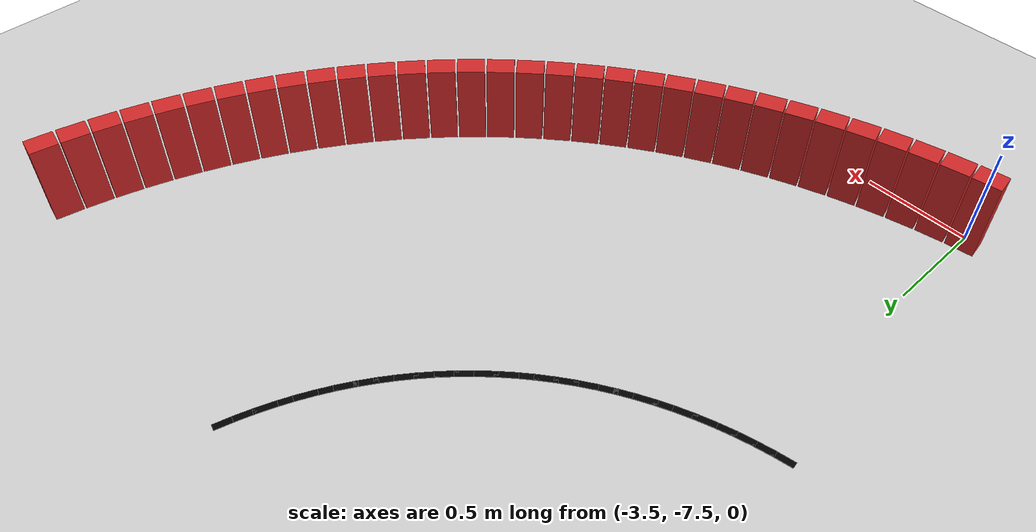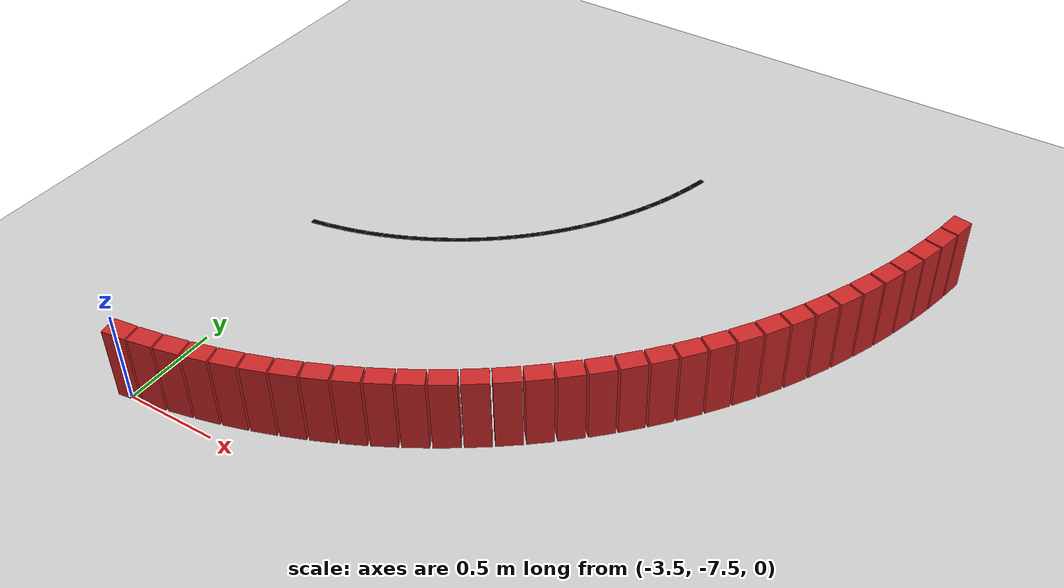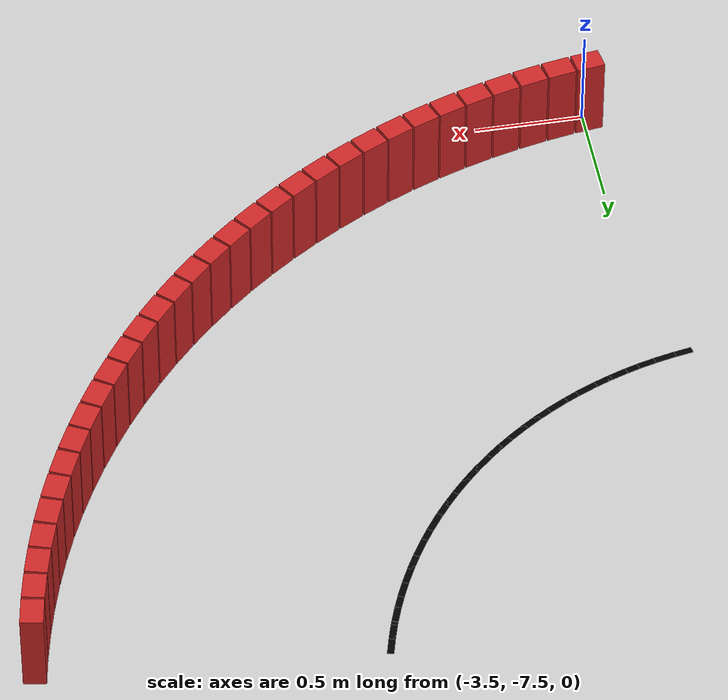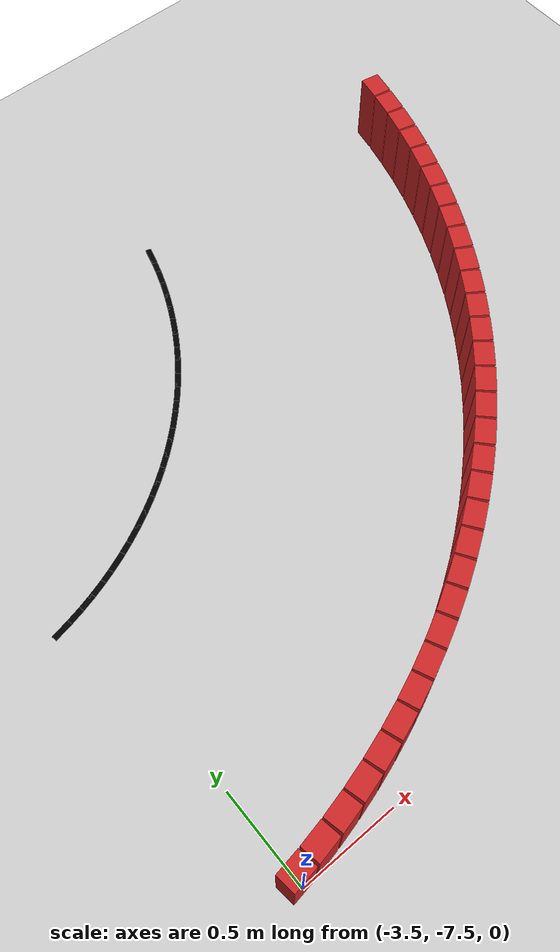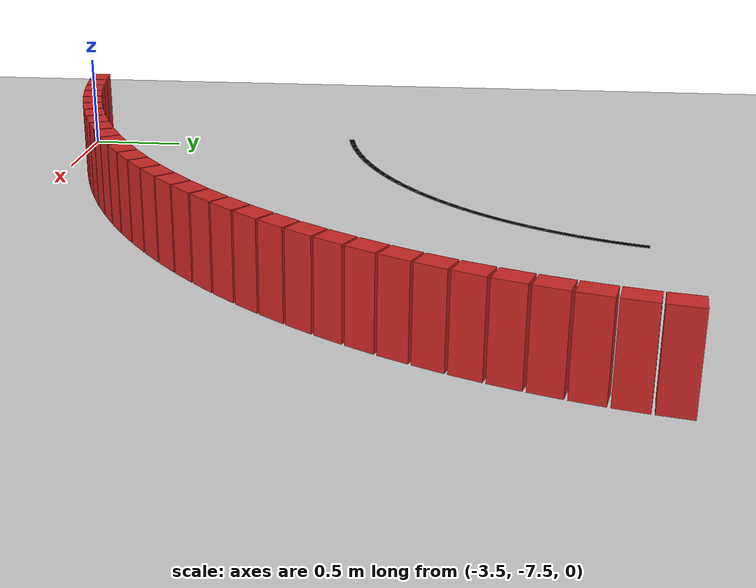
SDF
<sdf version="1.6">
 <world name="new_race_track">
  <include><uri>model://ground_plane</uri></include>
  <include><uri>model://sun</uri></include>
  <model name="ow_117">
   <static>true</static>
   <pose>-3.5083 -7.4649 0.200 0 0 0.1410</pose>
   <link name="l">
    <collision name="c"><geometry><box><size>0.1305 0.1 0.4</size></box></geometry></collision>
    <visual name="v">
     <geometry><box><size>0.1305 0.1 0.4</size></box></geometry>
     <material><ambient>0.8 0.15 0.15 1</ambient><diffuse>0.8 0.15 0.15 1</diffuse></material>
    </visual>
   </link>
  </model>
  <model name="ow_118">
   <static>true</static>
   <pose>-3.3692 -7.4423 0.200 0 0 0.1812</pose>
   <link name="l">
    <collision name="c"><geometry><box><size>0.1305 0.1 0.4</size></box></geometry></collision>
    <visual name="v">
     <geometry><box><size>0.1305 0.1 0.4</size></box></geometry>
     <material><ambient>0.8 0.15 0.15 1</ambient><diffuse>0.8 0.15 0.15 1</diffuse></material>
    </visual>
   </link>
  </model>
  <model name="ow_119">
   <static>true</static>
   <pose>-3.2311 -7.4141 0.200 0 0 0.2215</pose>
   <link name="l">
    <collision name="c"><geometry><box><size>0.1305 0.1 0.4</size></box></geometry></collision>
    <visual name="v">
     <geometry><box><size>0.1305 0.1 0.4</size></box></geometry>
     <material><ambient>0.8 0.15 0.15 1</ambient><diffuse>0.8 0.15 0.15 1</diffuse></material>
    </visual>
   </link>
  </model>
  <model name="ow_120">
   <static>true</static>
   <pose>-3.0942 -7.3803 0.200 0 0 0.2618</pose>
   <link name="l">
    <collision name="c"><geometry><box><size>0.1305 0.1 0.4</size></box></geometry></collision>
    <visual name="v">
     <geometry><box><size>0.1305 0.1 0.4</size></box></geometry>
     <material><ambient>0.8 0.15 0.15 1</ambient><diffuse>0.8 0.15 0.15 1</diffuse></material>
    </visual>
   </link>
  </model>
  <model name="ow_121">
   <static>true</static>
   <pose>-2.9589 -7.3411 0.200 0 0 0.3021</pose>
   <link name="l">
    <collision name="c"><geometry><box><size>0.1305 0.1 0.4</size></box></geometry></collision>
    <visual name="v">
     <geometry><box><size>0.1305 0.1 0.4</size></box></geometry>
     <material><ambient>0.8 0.15 0.15 1</ambient><diffuse>0.8 0.15 0.15 1</diffuse></material>
    </visual>
   </link>
  </model>
  <model name="ow_122">
   <static>true</static>
   <pose>-2.8252 -7.2965 0.200 0 0 0.3424</pose>
   <link name="l">
    <collision name="c"><geometry><box><size>0.1305 0.1 0.4</size></box></geometry></collision>
    <visual name="v">
     <geometry><box><size>0.1305 0.1 0.4</size></box></geometry>
     <material><ambient>0.8 0.15 0.15 1</ambient><diffuse>0.8 0.15 0.15 1</diffuse></material>
    </visual>
   </link>
  </model>
  <model name="ow_123">
   <static>true</static>
   <pose>-2.6934 -7.2465 0.200 0 0 0.3826</pose>
   <link name="l">
    <collision name="c"><geometry><box><size>0.1305 0.1 0.4</size></box></geometry></collision>
    <visual name="v">
     <geometry><box><size>0.1305 0.1 0.4</size></box></geometry>
     <material><ambient>0.8 0.15 0.15 1</ambient><diffuse>0.8 0.15 0.15 1</diffuse></material>
    </visual>
   </link>
  </model>
  <model name="ow_124">
   <static>true</static>
   <pose>-2.5637 -7.1913 0.200 0 0 0.4229</pose>
   <link name="l">
    <collision name="c"><geometry><box><size>0.1305 0.1 0.4</size></box></geometry></collision>
    <visual name="v">
     <geometry><box><size>0.1305 0.1 0.4</size></box></geometry>
     <material><ambient>0.8 0.15 0.15 1</ambient><diffuse>0.8 0.15 0.15 1</diffuse></material>
    </visual>
   </link>
  </model>
  <model name="ow_125">
   <static>true</static>
   <pose>-2.4364 -7.1309 0.200 0 0 0.4632</pose>
   <link name="l">
    <collision name="c"><geometry><box><size>0.1305 0.1 0.4</size></box></geometry></collision>
    <visual name="v">
     <geometry><box><size>0.1305 0.1 0.4</size></box></geometry>
     <material><ambient>0.8 0.15 0.15 1</ambient><diffuse>0.8 0.15 0.15 1</diffuse></material>
    </visual>
   </link>
  </model>
  <model name="ow_126">
   <static>true</static>
   <pose>-2.3116 -7.0654 0.200 0 0 0.5035</pose>
   <link name="l">
    <collision name="c"><geometry><box><size>0.1305 0.1 0.4</size></box></geometry></collision>
    <visual name="v">
     <geometry><box><size>0.1305 0.1 0.4</size></box></geometry>
     <material><ambient>0.8 0.15 0.15 1</ambient><diffuse>0.8 0.15 0.15 1</diffuse></material>
    </visual>
   </link>
  </model>
  <model name="ow_127">
   <static>true</static>
   <pose>-2.1895 -6.9949 0.200 0 0 0.5437</pose>
   <link name="l">
    <collision name="c"><geometry><box><size>0.1305 0.1 0.4</size></box></geometry></collision>
    <visual name="v">
     <geometry><box><size>0.1305 0.1 0.4</size></box></geometry>
     <material><ambient>0.8 0.15 0.15 1</ambient><diffuse>0.8 0.15 0.15 1</diffuse></material>
    </visual>
   </link>
  </model>
  <model name="ow_128">
   <static>true</static>
   <pose>-2.0704 -6.9196 0.200 0 0 0.5840</pose>
   <link name="l">
    <collision name="c"><geometry><box><size>0.1305 0.1 0.4</size></box></geometry></collision>
    <visual name="v">
     <geometry><box><size>0.1305 0.1 0.4</size></box></geometry>
     <material><ambient>0.8 0.15 0.15 1</ambient><diffuse>0.8 0.15 0.15 1</diffuse></material>
    </visual>
   </link>
  </model>
  <model name="ow_129">
   <static>true</static>
   <pose>-1.9544 -6.8395 0.200 0 0 0.6243</pose>
   <link name="l">
    <collision name="c"><geometry><box><size>0.1305 0.1 0.4</size></box></geometry></collision>
    <visual name="v">
     <geometry><box><size>0.1305 0.1 0.4</size></box></geometry>
     <material><ambient>0.8 0.15 0.15 1</ambient><diffuse>0.8 0.15 0.15 1</diffuse></material>
    </visual>
   </link>
  </model>
  <model name="ow_130">
   <static>true</static>
   <pose>-1.8417 -6.7548 0.200 0 0 0.6646</pose>
   <link name="l">
    <collision name="c"><geometry><box><size>0.1305 0.1 0.4</size></box></geometry></collision>
    <visual name="v">
     <geometry><box><size>0.1305 0.1 0.4</size></box></geometry>
     <material><ambient>0.8 0.15 0.15 1</ambient><diffuse>0.8 0.15 0.15 1</diffuse></material>
    </visual>
   </link>
  </model>
  <model name="ow_131">
   <static>true</static>
   <pose>-1.7326 -6.6657 0.200 0 0 0.7048</pose>
   <link name="l">
    <collision name="c"><geometry><box><size>0.1305 0.1 0.4</size></box></geometry></collision>
    <visual name="v">
     <geometry><box><size>0.1305 0.1 0.4</size></box></geometry>
     <material><ambient>0.8 0.15 0.15 1</ambient><diffuse>0.8 0.15 0.15 1</diffuse></material>
    </visual>
   </link>
  </model>
  <model name="ow_132">
   <static>true</static>
   <pose>-1.6271 -6.5722 0.200 0 0 0.7451</pose>
   <link name="l">
    <collision name="c"><geometry><box><size>0.1305 0.1 0.4</size></box></geometry></collision>
    <visual name="v">
     <geometry><box><size>0.1305 0.1 0.4</size></box></geometry>
     <material><ambient>0.8 0.15 0.15 1</ambient><diffuse>0.8 0.15 0.15 1</diffuse></material>
    </visual>
   </link>
  </model>
  <model name="ow_133">
   <static>true</static>
   <pose>-1.5254 -6.4746 0.200 0 0 0.7854</pose>
   <link name="l">
    <collision name="c"><geometry><box><size>0.1305 0.1 0.4</size></box></geometry></collision>
    <visual name="v">
     <geometry><box><size>0.1305 0.1 0.4</size></box></geometry>
     <material><ambient>0.8 0.15 0.15 1</ambient><diffuse>0.8 0.15 0.15 1</diffuse></material>
    </visual>
   </link>
  </model>
  <model name="ow_134">
   <static>true</static>
   <pose>-1.4278 -6.3729 0.200 0 0 0.8257</pose>
   <link name="l">
    <collision name="c"><geometry><box><size>0.1305 0.1 0.4</size></box></geometry></collision>
    <visual name="v">
     <geometry><box><size>0.1305 0.1 0.4</size></box></geometry>
     <material><ambient>0.8 0.15 0.15 1</ambient><diffuse>0.8 0.15 0.15 1</diffuse></material>
    </visual>
   </link>
  </model>
  <model name="ow_135">
   <static>true</static>
   <pose>-1.3343 -6.2674 0.200 0 0 0.8660</pose>
   <link name="l">
    <collision name="c"><geometry><box><size>0.1305 0.1 0.4</size></box></geometry></collision>
    <visual name="v">
     <geometry><box><size>0.1305 0.1 0.4</size></box></geometry>
     <material><ambient>0.8 0.15 0.15 1</ambient><diffuse>0.8 0.15 0.15 1</diffuse></material>
    </visual>
   </link>
  </model>
  <model name="ow_136">
   <static>true</static>
   <pose>-1.2452 -6.1583 0.200 0 0 0.9062</pose>
   <link name="l">
    <collision name="c"><geometry><box><size>0.1305 0.1 0.4</size></box></geometry></collision>
    <visual name="v">
     <geometry><box><size>0.1305 0.1 0.4</size></box></geometry>
     <material><ambient>0.8 0.15 0.15 1</ambient><diffuse>0.8 0.15 0.15 1</diffuse></material>
    </visual>
   </link>
  </model>
  <model name="ow_137">
   <static>true</static>
   <pose>-1.1605 -6.0456 0.200 0 0 0.9465</pose>
   <link name="l">
    <collision name="c"><geometry><box><size>0.1305 0.1 0.4</size></box></geometry></collision>
    <visual name="v">
     <geometry><box><size>0.1305 0.1 0.4</size></box></geometry>
     <material><ambient>0.8 0.15 0.15 1</ambient><diffuse>0.8 0.15 0.15 1</diffuse></material>
    </visual>
   </link>
  </model>
  <model name="ow_138">
   <static>true</static>
   <pose>-1.0804 -5.9296 0.200 0 0 0.9868</pose>
   <link name="l">
    <collision name="c"><geometry><box><size>0.1305 0.1 0.4</size></box></geometry></collision>
    <visual name="v">
     <geometry><box><size>0.1305 0.1 0.4</size></box></geometry>
     <material><ambient>0.8 0.15 0.15 1</ambient><diffuse>0.8 0.15 0.15 1</diffuse></material>
    </visual>
   </link>
  </model>
  <model name="ow_139">
   <static>true</static>
   <pose>-1.0051 -5.8105 0.200 0 0 1.0271</pose>
   <link name="l">
    <collision name="c"><geometry><box><size>0.1305 0.1 0.4</size></box></geometry></collision>
    <visual name="v">
     <geometry><box><size>0.1305 0.1 0.4</size></box></geometry>
     <material><ambient>0.8 0.15 0.15 1</ambient><diffuse>0.8 0.15 0.15 1</diffuse></material>
    </visual>
   </link>
  </model>
  <model name="ow_140">
   <static>true</static>
   <pose>-0.9346 -5.6884 0.200 0 0 1.0673</pose>
   <link name="l">
    <collision name="c"><geometry><box><size>0.1305 0.1 0.4</size></box></geometry></collision>
    <visual name="v">
     <geometry><box><size>0.1305 0.1 0.4</size></box></geometry>
     <material><ambient>0.8 0.15 0.15 1</ambient><diffuse>0.8 0.15 0.15 1</diffuse></material>
    </visual>
   </link>
  </model>
  <model name="ow_141">
   <static>true</static>
   <pose>-0.8691 -5.5636 0.200 0 0 1.1076</pose>
   <link name="l">
    <collision name="c"><geometry><box><size>0.1305 0.1 0.4</size></box></geometry></collision>
    <visual name="v">
     <geometry><box><size>0.1305 0.1 0.4</size></box></geometry>
     <material><ambient>0.8 0.15 0.15 1</ambient><diffuse>0.8 0.15 0.15 1</diffuse></material>
    </visual>
   </link>
  </model>
  <model name="ow_142">
   <static>true</static>
   <pose>-0.8087 -5.4363 0.200 0 0 1.1479</pose>
   <link name="l">
    <collision name="c"><geometry><box><size>0.1305 0.1 0.4</size></box></geometry></collision>
    <visual name="v">
     <geometry><box><size>0.1305 0.1 0.4</size></box></geometry>
     <material><ambient>0.8 0.15 0.15 1</ambient><diffuse>0.8 0.15 0.15 1</diffuse></material>
    </visual>
   </link>
  </model>
  <model name="ow_143">
   <static>true</static>
   <pose>-0.7535 -5.3066 0.200 0 0 1.1882</pose>
   <link name="l">
    <collision name="c"><geometry><box><size>0.1305 0.1 0.4</size></box></geometry></collision>
    <visual name="v">
     <geometry><box><size>0.1305 0.1 0.4</size></box></geometry>
     <material><ambient>0.8 0.15 0.15 1</ambient><diffuse>0.8 0.15 0.15 1</diffuse></material>
    </visual>
   </link>
  </model>
  <model name="ow_144">
   <static>true</static>
   <pose>-0.7035 -5.1748 0.200 0 0 1.2284</pose>
   <link name="l">
    <collision name="c"><geometry><box><size>0.1305 0.1 0.4</size></box></geometry></collision>
    <visual name="v">
     <geometry><box><size>0.1305 0.1 0.4</size></box></geometry>
     <material><ambient>0.8 0.15 0.15 1</ambient><diffuse>0.8 0.15 0.15 1</diffuse></material>
    </visual>
   </link>
  </model>
  <model name="ow_145">
   <static>true</static>
   <pose>-0.6589 -5.0411 0.200 0 0 1.2687</pose>
   <link name="l">
    <collision name="c"><geometry><box><size>0.1305 0.1 0.4</size></box></geometry></collision>
    <visual name="v">
     <geometry><box><size>0.1305 0.1 0.4</size></box></geometry>
     <material><ambient>0.8 0.15 0.15 1</ambient><diffuse>0.8 0.15 0.15 1</diffuse></material>
    </visual>
   </link>
  </model>
  <model name="ow_146">
   <static>true</static>
   <pose>-0.6197 -4.9058 0.200 0 0 1.3090</pose>
   <link name="l">
    <collision name="c"><geometry><box><size>0.1305 0.1 0.4</size></box></geometry></collision>
    <visual name="v">
     <geometry><box><size>0.1305 0.1 0.4</size></box></geometry>
     <material><ambient>0.8 0.15 0.15 1</ambient><diffuse>0.8 0.15 0.15 1</diffuse></material>
    </visual>
   </link>
  </model>
  <model name="ow_147">
   <static>true</static>
   <pose>-0.5859 -4.7689 0.200 0 0 1.3493</pose>
   <link name="l">
    <collision name="c"><geometry><box><size>0.1305 0.1 0.4</size></box></geometry></collision>
    <visual name="v">
     <geometry><box><size>0.1305 0.1 0.4</size></box></geometry>
     <material><ambient>0.8 0.15 0.15 1</ambient><diffuse>0.8 0.15 0.15 1</diffuse></material>
    </visual>
   </link>
  </model>
  <model name="ow_148">
   <static>true</static>
   <pose>-0.5577 -4.6308 0.200 0 0 1.3896</pose>
   <link name="l">
    <collision name="c"><geometry><box><size>0.1305 0.1 0.4</size></box></geometry></collision>
    <visual name="v">
     <geometry><box><size>0.1305 0.1 0.4</size></box></geometry>
     <material><ambient>0.8 0.15 0.15 1</ambient><diffuse>0.8 0.15 0.15 1</diffuse></material>
    </visual>
   </link>
  </model>
  <model name="line_118">
   <static>true</static>
   <pose>-3.6396 -5.9668 0.002 0 0 0.1812</pose>
   <link name="l">
    <visual name="v">
     <geometry><box><size>0.1005 0.03 0.002</size></box></geometry>
     <material><ambient>0 0 0 1</ambient><diffuse>0 0 0 1</diffuse></material>
    </visual>
   </link>
  </model>
  <model name="line_119">
   <static>true</static>
   <pose>-3.5607 -5.9507 0.002 0 0 0.2215</pose>
   <link name="l">
    <visual name="v">
     <geometry><box><size>0.1005 0.03 0.002</size></box></geometry>
     <material><ambient>0 0 0 1</ambient><diffuse>0 0 0 1</diffuse></material>
    </visual>
   </link>
  </model>
  <model name="line_120">
   <static>true</static>
   <pose>-3.4825 -5.9315 0.002 0 0 0.2618</pose>
   <link name="l">
    <visual name="v">
     <geometry><box><size>0.1005 0.03 0.002</size></box></geometry>
     <material><ambient>0 0 0 1</ambient><diffuse>0 0 0 1</diffuse></material>
    </visual>
   </link>
  </model>
  <model name="line_121">
   <static>true</static>
   <pose>-3.4051 -5.9091 0.002 0 0 0.3021</pose>
   <link name="l">
    <visual name="v">
     <geometry><box><size>0.1005 0.03 0.002</size></box></geometry>
     <material><ambient>0 0 0 1</ambient><diffuse>0 0 0 1</diffuse></material>
    </visual>
   </link>
  </model>
  <model name="line_122">
   <static>true</static>
   <pose>-3.3287 -5.8836 0.002 0 0 0.3424</pose>
   <link name="l">
    <visual name="v">
     <geometry><box><size>0.1005 0.03 0.002</size></box></geometry>
     <material><ambient>0 0 0 1</ambient><diffuse>0 0 0 1</diffuse></material>
    </visual>
   </link>
  </model>
  <model name="line_123">
   <static>true</static>
   <pose>-3.2534 -5.8550 0.002 0 0 0.3826</pose>
   <link name="l">
    <visual name="v">
     <geometry><box><size>0.1005 0.03 0.002</size></box></geometry>
     <material><ambient>0 0 0 1</ambient><diffuse>0 0 0 1</diffuse></material>
    </visual>
   </link>
  </model>
  <model name="line_124">
   <static>true</static>
   <pose>-3.1793 -5.8234 0.002 0 0 0.4229</pose>
   <link name="l">
    <visual name="v">
     <geometry><box><size>0.1005 0.03 0.002</size></box></geometry>
     <material><ambient>0 0 0 1</ambient><diffuse>0 0 0 1</diffuse></material>
    </visual>
   </link>
  </model>
  <model name="line_125">
   <static>true</static>
   <pose>-3.1066 -5.7889 0.002 0 0 0.4632</pose>
   <link name="l">
    <visual name="v">
     <geometry><box><size>0.1005 0.03 0.002</size></box></geometry>
     <material><ambient>0 0 0 1</ambient><diffuse>0 0 0 1</diffuse></material>
    </visual>
   </link>
  </model>
  <model name="line_126">
   <static>true</static>
   <pose>-3.0353 -5.7515 0.002 0 0 0.5035</pose>
   <link name="l">
    <visual name="v">
     <geometry><box><size>0.1005 0.03 0.002</size></box></geometry>
     <material><ambient>0 0 0 1</ambient><diffuse>0 0 0 1</diffuse></material>
    </visual>
   </link>
  </model>
  <model name="line_127">
   <static>true</static>
   <pose>-2.9655 -5.7112 0.002 0 0 0.5437</pose>
   <link name="l">
    <visual name="v">
     <geometry><box><size>0.1005 0.03 0.002</size></box></geometry>
     <material><ambient>0 0 0 1</ambient><diffuse>0 0 0 1</diffuse></material>
    </visual>
   </link>
  </model>
  <model name="line_128">
   <static>true</static>
   <pose>-2.8975 -5.6682 0.002 0 0 0.5840</pose>
   <link name="l">
    <visual name="v">
     <geometry><box><size>0.1005 0.03 0.002</size></box></geometry>
     <material><ambient>0 0 0 1</ambient><diffuse>0 0 0 1</diffuse></material>
    </visual>
   </link>
  </model>
  <model name="line_129">
   <static>true</static>
   <pose>-2.8312 -5.6224 0.002 0 0 0.6243</pose>
   <link name="l">
    <visual name="v">
     <geometry><box><size>0.1005 0.03 0.002</size></box></geometry>
     <material><ambient>0 0 0 1</ambient><diffuse>0 0 0 1</diffuse></material>
    </visual>
   </link>
  </model>
  <model name="line_130">
   <static>true</static>
   <pose>-2.7668 -5.5740 0.002 0 0 0.6646</pose>
   <link name="l">
    <visual name="v">
     <geometry><box><size>0.1005 0.03 0.002</size></box></geometry>
     <material><ambient>0 0 0 1</ambient><diffuse>0 0 0 1</diffuse></material>
    </visual>
   </link>
  </model>
  <model name="line_131">
   <static>true</static>
   <pose>-2.7044 -5.5231 0.002 0 0 0.7048</pose>
   <link name="l">
    <visual name="v">
     <geometry><box><size>0.1005 0.03 0.002</size></box></geometry>
     <material><ambient>0 0 0 1</ambient><diffuse>0 0 0 1</diffuse></material>
    </visual>
   </link>
  </model>
  <model name="line_132">
   <static>true</static>
   <pose>-2.6442 -5.4697 0.002 0 0 0.7451</pose>
   <link name="l">
    <visual name="v">
     <geometry><box><size>0.1005 0.03 0.002</size></box></geometry>
     <material><ambient>0 0 0 1</ambient><diffuse>0 0 0 1</diffuse></material>
    </visual>
   </link>
  </model>
  <model name="line_133">
   <static>true</static>
   <pose>-2.5861 -5.4139 0.002 0 0 0.7854</pose>
   <link name="l">
    <visual name="v">
     <geometry><box><size>0.1005 0.03 0.002</size></box></geometry>
     <material><ambient>0 0 0 1</ambient><diffuse>0 0 0 1</diffuse></material>
    </visual>
   </link>
  </model>
  <model name="line_134">
   <static>true</static>
   <pose>-2.5303 -5.3558 0.002 0 0 0.8257</pose>
   <link name="l">
    <visual name="v">
     <geometry><box><size>0.1005 0.03 0.002</size></box></geometry>
     <material><ambient>0 0 0 1</ambient><diffuse>0 0 0 1</diffuse></material>
    </visual>
   </link>
  </model>
  <model name="line_135">
   <static>true</static>
   <pose>-2.4769 -5.2956 0.002 0 0 0.8660</pose>
   <link name="l">
    <visual name="v">
     <geometry><box><size>0.1005 0.03 0.002</size></box></geometry>
     <material><ambient>0 0 0 1</ambient><diffuse>0 0 0 1</diffuse></material>
    </visual>
   </link>
  </model>
  <model name="line_136">
   <static>true</static>
   <pose>-2.4260 -5.2332 0.002 0 0 0.9062</pose>
   <link name="l">
    <visual name="v">
     <geometry><box><size>0.1005 0.03 0.002</size></box></geometry>
     <material><ambient>0 0 0 1</ambient><diffuse>0 0 0 1</diffuse></material>
    </visual>
   </link>
  </model>
  <model name="line_137">
   <static>true</static>
   <pose>-2.3776 -5.1688 0.002 0 0 0.9465</pose>
   <link name="l">
    <visual name="v">
     <geometry><box><size>0.1005 0.03 0.002</size></box></geometry>
     <material><ambient>0 0 0 1</ambient><diffuse>0 0 0 1</diffuse></material>
    </visual>
   </link>
  </model>
  <model name="line_138">
   <static>true</static>
   <pose>-2.3318 -5.1025 0.002 0 0 0.9868</pose>
   <link name="l">
    <visual name="v">
     <geometry><box><size>0.1005 0.03 0.002</size></box></geometry>
     <material><ambient>0 0 0 1</ambient><diffuse>0 0 0 1</diffuse></material>
    </visual>
   </link>
  </model>
  <model name="line_139">
   <static>true</static>
   <pose>-2.2888 -5.0345 0.002 0 0 1.0271</pose>
   <link name="l">
    <visual name="v">
     <geometry><box><size>0.1005 0.03 0.002</size></box></geometry>
     <material><ambient>0 0 0 1</ambient><diffuse>0 0 0 1</diffuse></material>
    </visual>
   </link>
  </model>
  <model name="line_140">
   <static>true</static>
   <pose>-2.2485 -4.9647 0.002 0 0 1.0673</pose>
   <link name="l">
    <visual name="v">
     <geometry><box><size>0.1005 0.03 0.002</size></box></geometry>
     <material><ambient>0 0 0 1</ambient><diffuse>0 0 0 1</diffuse></material>
    </visual>
   </link>
  </model>
  <model name="line_141">
   <static>true</static>
   <pose>-2.2111 -4.8934 0.002 0 0 1.1076</pose>
   <link name="l">
    <visual name="v">
     <geometry><box><size>0.1005 0.03 0.002</size></box></geometry>
     <material><ambient>0 0 0 1</ambient><diffuse>0 0 0 1</diffuse></material>
    </visual>
   </link>
  </model>
  <model name="line_142">
   <static>true</static>
   <pose>-2.1766 -4.8207 0.002 0 0 1.1479</pose>
   <link name="l">
    <visual name="v">
     <geometry><box><size>0.1005 0.03 0.002</size></box></geometry>
     <material><ambient>0 0 0 1</ambient><diffuse>0 0 0 1</diffuse></material>
    </visual>
   </link>
  </model>
  <model name="line_143">
   <static>true</static>
   <pose>-2.1450 -4.7466 0.002 0 0 1.1882</pose>
   <link name="l">
    <visual name="v">
     <geometry><box><size>0.1005 0.03 0.002</size></box></geometry>
     <material><ambient>0 0 0 1</ambient><diffuse>0 0 0 1</diffuse></material>
    </visual>
   </link>
  </model>
  <model name="line_144">
   <static>true</static>
   <pose>-2.1164 -4.6713 0.002 0 0 1.2284</pose>
   <link name="l">
    <visual name="v">
     <geometry><box><size>0.1005 0.03 0.002</size></box></geometry>
     <material><ambient>0 0 0 1</ambient><diffuse>0 0 0 1</diffuse></material>
    </visual>
   </link>
  </model>
  <model name="line_145">
   <static>true</static>
   <pose>-2.0909 -4.5949 0.002 0 0 1.2687</pose>
   <link name="l">
    <visual name="v">
     <geometry><box><size>0.1005 0.03 0.002</size></box></geometry>
     <material><ambient>0 0 0 1</ambient><diffuse>0 0 0 1</diffuse></material>
    </visual>
   </link>
  </model>
  <model name="line_146">
   <static>true</static>
   <pose>-2.0685 -4.5175 0.002 0 0 1.3090</pose>
   <link name="l">
    <visual name="v">
     <geometry><box><size>0.1005 0.03 0.002</size></box></geometry>
     <material><ambient>0 0 0 1</ambient><diffuse>0 0 0 1</diffuse></material>
    </visual>
   </link>
  </model>
 </world>
</sdf>
